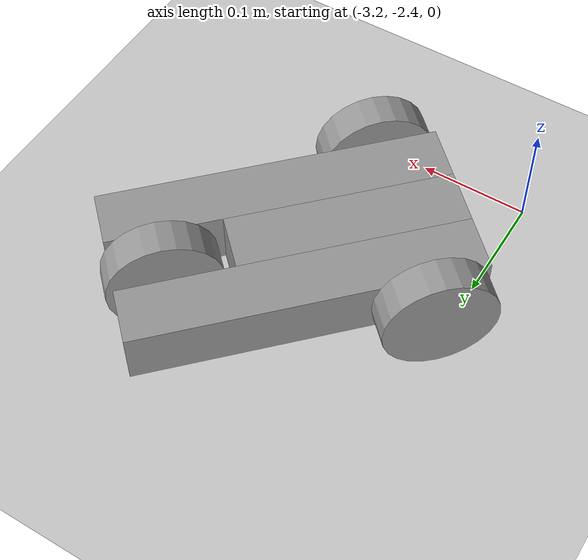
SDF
<sdf version="1.6">
 <world name="default">
  <model name="ground_plane">
   <static>1</static>
   <link name="link">
    <collision name="collision">
     <geometry><plane><normal>0 0 1</normal><size>100 100</size></plane></geometry>
     <surface><friction><ode><mu>100</mu><mu2>50</mu2></ode></friction></surface>
    </collision>
    <visual name="visual">
     <cast_shadows>0</cast_shadows>
     <geometry><plane><normal>0 0 1</normal><size>100 100</size></plane></geometry>
     <material>
      <script><uri>file://media/materials/scripts/gazebo.material</uri><name>Gazebo/Grey</name></script>
     </material>
    </visual>
   </link>
  </model>
  <model name="tricycle_0">
   <link name="link_0_clone">
    <pose>0.05011 -0.0238 0 0 -0 0</pose>
    <inertial>
     <mass>1</mass>
     <inertia>
      <ixx>0.166667</ixx>
      <ixy>0</ixy>
      <ixz>0</ixz>
      <iyy>0.166667</iyy>
      <iyz>0</iyz>
      <izz>0.166667</izz>
     </inertia>
    </inertial>
    <visual name="visual">
     <geometry><box><size>0.05 0.3 0.05</size></box></geometry>
     <material>
      <lighting>1</lighting>
      <script><uri>file://media/materials/scripts/gazebo.material</uri><name>Gazebo/Grey</name></script>
      <shader type="pixel"><normal_map>__default__</normal_map></shader>
      <ambient>0.3 0.3 0.3 1</ambient>
      <diffuse>0.7 0.7 0.7 1</diffuse>
      <specular>0.01 0.01 0.01 1</specular>
      <emissive>0 0 0 1</emissive>
     </material>
    </visual>
    <collision name="collision">
     <geometry><box><size>0.05 0.3 0.05</size></box></geometry>
     <surface>
      <friction>
       <ode><mu>1</mu><mu2>1</mu2><fdir1>0 0 0</fdir1><slip1>0</slip1><slip2>0</slip2></ode>
       <torsional>
        <coefficient>1</coefficient>
        <patch_radius>0</patch_radius>
        <surface_radius>0</surface_radius>
        <use_patch_radius>1</use_patch_radius>
        <ode><slip>0</slip></ode>
       </torsional>
      </friction>
      <bounce><restitution_coefficient>0</restitution_coefficient><threshold>1e+06</threshold></bounce>
      <contact>
       <collide_without_contact>0</collide_without_contact>
       <collide_without_contact_bitmask>1</collide_without_contact_bitmask>
       <collide_bitmask>1</collide_bitmask>
       <ode>
        <soft_cfm>0</soft_cfm>
        <soft_erp>0.2</soft_erp>
        <kp>1e+13</kp>
        <kd>1</kd>
        <max_vel>0.01</max_vel>
        <min_depth>0</min_depth>
       </ode>
       <bullet>
        <split_impulse>1</split_impulse>
        <split_impulse_penetration_threshold>-0.01</split_impulse_penetration_threshold>
        <soft_cfm>0</soft_cfm>
        <soft_erp>0.2</soft_erp>
        <kp>1e+13</kp>
        <kd>1</kd>
       </bullet>
      </contact>
     </surface>
    </collision>
   </link>
   <link name="link_0_clone_0">
    <pose>0.00011 0.0262 0 0 -0 0</pose>
    <inertial>
     <mass>1</mass>
     <inertia>
      <ixx>0.166667</ixx>
      <ixy>0</ixy>
      <ixz>0</ixz>
      <iyy>0.166667</iyy>
      <iyz>0</iyz>
      <izz>0.166667</izz>
     </inertia>
    </inertial>
    <visual name="visual">
     <geometry><box><size>0.05 0.2 0.05</size></box></geometry>
     <material>
      <lighting>1</lighting>
      <script><uri>file://media/materials/scripts/gazebo.material</uri><name>Gazebo/Grey</name></script>
      <shader type="pixel"><normal_map>__default__</normal_map></shader>
      <ambient>0.3 0.3 0.3 1</ambient>
      <diffuse>0.7 0.7 0.7 1</diffuse>
      <specular>0.01 0.01 0.01 1</specular>
      <emissive>0 0 0 1</emissive>
     </material>
    </visual>
    <collision name="collision">
     <geometry><box><size>0.05 0.2 0.05</size></box></geometry>
     <surface>
      <friction>
       <ode><mu>1</mu><mu2>1</mu2><fdir1>0 0 0</fdir1><slip1>0</slip1><slip2>0</slip2></ode>
       <torsional>
        <coefficient>1</coefficient>
        <patch_radius>0</patch_radius>
        <surface_radius>0</surface_radius>
        <use_patch_radius>1</use_patch_radius>
        <ode><slip>0</slip></ode>
       </torsional>
      </friction>
      <bounce><restitution_coefficient>0</restitution_coefficient><threshold>1e+06</threshold></bounce>
      <contact>
       <collide_without_contact>0</collide_without_contact>
       <collide_without_contact_bitmask>1</collide_without_contact_bitmask>
       <collide_bitmask>1</collide_bitmask>
       <ode>
        <soft_cfm>0</soft_cfm>
        <soft_erp>0.2</soft_erp>
        <kp>1e+13</kp>
        <kd>1</kd>
        <max_vel>0.01</max_vel>
        <min_depth>0</min_depth>
       </ode>
       <bullet>
        <split_impulse>1</split_impulse>
        <split_impulse_penetration_threshold>-0.01</split_impulse_penetration_threshold>
        <soft_cfm>0</soft_cfm>
        <soft_erp>0.2</soft_erp>
        <kp>1e+13</kp>
        <kd>1</kd>
       </bullet>
      </contact>
     </surface>
    </collision>
   </link>
   <link name="link_0_clone_clone">
    <pose>-0.04989 -0.0238 0 0 -0 0</pose>
    <inertial>
     <mass>1</mass>
     <inertia>
      <ixx>0.166667</ixx>
      <ixy>0</ixy>
      <ixz>0</ixz>
      <iyy>0.166667</iyy>
      <iyz>0</iyz>
      <izz>0.166667</izz>
     </inertia>
    </inertial>
    <visual name="visual">
     <geometry><box><size>0.05 0.3 0.05</size></box></geometry>
     <material>
      <lighting>1</lighting>
      <script><uri>file://media/materials/scripts/gazebo.material</uri><name>Gazebo/Grey</name></script>
      <shader type="pixel"><normal_map>__default__</normal_map></shader>
      <ambient>0.3 0.3 0.3 1</ambient>
      <diffuse>0.7 0.7 0.7 1</diffuse>
      <specular>0.01 0.01 0.01 1</specular>
      <emissive>0 0 0 1</emissive>
     </material>
    </visual>
    <collision name="collision">
     <geometry><box><size>0.05 0.3 0.05</size></box></geometry>
     <surface>
      <friction>
       <ode><mu>1</mu><mu2>1</mu2><fdir1>0 0 0</fdir1><slip1>0</slip1><slip2>0</slip2></ode>
       <torsional>
        <coefficient>1</coefficient>
        <patch_radius>0</patch_radius>
        <surface_radius>0</surface_radius>
        <use_patch_radius>1</use_patch_radius>
        <ode><slip>0</slip></ode>
       </torsional>
      </friction>
      <bounce><restitution_coefficient>0</restitution_coefficient><threshold>1e+06</threshold></bounce>
      <contact>
       <collide_without_contact>0</collide_without_contact>
       <collide_without_contact_bitmask>1</collide_without_contact_bitmask>
       <collide_bitmask>1</collide_bitmask>
       <ode>
        <soft_cfm>0</soft_cfm>
        <soft_erp>0.2</soft_erp>
        <kp>1e+13</kp>
        <kd>1</kd>
        <max_vel>0.01</max_vel>
        <min_depth>0</min_depth>
       </ode>
       <bullet>
        <split_impulse>1</split_impulse>
        <split_impulse_penetration_threshold>-0.01</split_impulse_penetration_threshold>
        <soft_cfm>0</soft_cfm>
        <soft_erp>0.2</soft_erp>
        <kp>1e+13</kp>
        <kd>1</kd>
       </bullet>
      </contact>
     </surface>
    </collision>
   </link>
   <link name="link_1">
    <pose>-0.000551 -0.131 0 0 -0 0</pose>
    <inertial>
     <mass>1</mass>
     <inertia><ixx>0.145833</ixx><ixy>0</ixy><ixz>0</ixz><iyy>0.145833</iyy><iyz>0</iyz><izz>0.125</izz></inertia>
    </inertial>
    <visual name="visual">
     <pose>0 0 0 0 1.5707 0</pose>
     <geometry><cylinder><radius>0.05</radius><length>0.03</length></cylinder></geometry>
     <material>
      <lighting>1</lighting>
      <script><uri>file://media/materials/scripts/gazebo.material</uri><name>Gazebo/Grey</name></script>
      <shader type="pixel"><normal_map>__default__</normal_map></shader>
      <ambient>0.3 0.3 0.3 1</ambient>
      <diffuse>0.7 0.7 0.7 1</diffuse>
      <specular>0.01 0.01 0.01 1</specular>
      <emissive>0 0 0 1</emissive>
     </material>
    </visual>
    <collision name="collision">
     <pose>0 0 0 0 1.5707 0</pose>
     <geometry><cylinder><radius>0.05</radius><length>0.03</length></cylinder></geometry>
     <surface>
      <friction>
       <ode><mu>1</mu><mu2>1</mu2><fdir1>0 0 0</fdir1><slip1>0</slip1><slip2>0</slip2></ode>
       <torsional>
        <coefficient>1</coefficient>
        <patch_radius>0</patch_radius>
        <surface_radius>0</surface_radius>
        <use_patch_radius>1</use_patch_radius>
        <ode><slip>0</slip></ode>
       </torsional>
      </friction>
      <bounce><restitution_coefficient>0</restitution_coefficient><threshold>1e+06</threshold></bounce>
      <contact>
       <collide_without_contact>0</collide_without_contact>
       <collide_without_contact_bitmask>1</collide_without_contact_bitmask>
       <collide_bitmask>1</collide_bitmask>
       <ode>
        <soft_cfm>0</soft_cfm>
        <soft_erp>0.2</soft_erp>
        <kp>1e+13</kp>
        <kd>1</kd>
        <max_vel>0.01</max_vel>
        <min_depth>0</min_depth>
       </ode>
       <bullet>
        <split_impulse>1</split_impulse>
        <split_impulse_penetration_threshold>-0.01</split_impulse_penetration_threshold>
        <soft_cfm>0</soft_cfm>
        <soft_erp>0.2</soft_erp>
        <kp>1e+13</kp>
        <kd>1</kd>
       </bullet>
      </contact>
     </surface>
    </collision>
   </link>
   <link name="link_1_clone">
    <pose>0.090114 0.0762 0 0 -0 0</pose>
    <inertial>
     <mass>1</mass>
     <inertia><ixx>0.145833</ixx><ixy>0</ixy><ixz>0</ixz><iyy>0.145833</iyy><iyz>0</iyz><izz>0.125</izz></inertia>
    </inertial>
    <visual name="visual">
     <pose>0 0 0 0 1.5707 0</pose>
     <geometry><cylinder><radius>0.05</radius><length>0.03</length></cylinder></geometry>
     <material>
      <lighting>1</lighting>
      <script><uri>file://media/materials/scripts/gazebo.material</uri><name>Gazebo/Grey</name></script>
      <shader type="pixel"><normal_map>__default__</normal_map></shader>
      <ambient>0.3 0.3 0.3 1</ambient>
      <diffuse>0.7 0.7 0.7 1</diffuse>
      <specular>0.01 0.01 0.01 1</specular>
      <emissive>0 0 0 1</emissive>
     </material>
    </visual>
    <collision name="collision">
     <pose>0 0 0 0 1.5707 0</pose>
     <geometry><cylinder><radius>0.05</radius><length>0.03</length></cylinder></geometry>
     <surface>
      <friction>
       <ode><mu>1</mu><mu2>1</mu2><fdir1>0 0 0</fdir1><slip1>0</slip1><slip2>0</slip2></ode>
       <torsional>
        <coefficient>1</coefficient>
        <patch_radius>0</patch_radius>
        <surface_radius>0</surface_radius>
        <use_patch_radius>1</use_patch_radius>
        <ode><slip>0</slip></ode>
       </torsional>
      </friction>
      <bounce><restitution_coefficient>0</restitution_coefficient><threshold>1e+06</threshold></bounce>
      <contact>
       <collide_without_contact>0</collide_without_contact>
       <collide_without_contact_bitmask>1</collide_without_contact_bitmask>
       <collide_bitmask>1</collide_bitmask>
       <ode>
        <soft_cfm>0</soft_cfm>
        <soft_erp>0.2</soft_erp>
        <kp>1e+13</kp>
        <kd>1</kd>
        <max_vel>0.01</max_vel>
        <min_depth>0</min_depth>
       </ode>
       <bullet>
        <split_impulse>1</split_impulse>
        <split_impulse_penetration_threshold>-0.01</split_impulse_penetration_threshold>
        <soft_cfm>0</soft_cfm>
        <soft_erp>0.2</soft_erp>
        <kp>1e+13</kp>
        <kd>1</kd>
       </bullet>
      </contact>
     </surface>
    </collision>
   </link>
   <link name="link_1_clone_0">
    <pose>-0.089895 0.0762 0 0 -0 0</pose>
    <inertial>
     <mass>1</mass>
     <inertia><ixx>0.145833</ixx><ixy>0</ixy><ixz>0</ixz><iyy>0.145833</iyy><iyz>0</iyz><izz>0.125</izz></inertia>
    </inertial>
    <visual name="visual">
     <pose>0 0 0 0 1.5707 0</pose>
     <geometry><cylinder><radius>0.05</radius><length>0.03</length></cylinder></geometry>
     <material>
      <lighting>1</lighting>
      <script><uri>file://media/materials/scripts/gazebo.material</uri><name>Gazebo/Grey</name></script>
      <shader type="pixel"><normal_map>__default__</normal_map></shader>
      <ambient>0.3 0.3 0.3 1</ambient>
      <diffuse>0.7 0.7 0.7 1</diffuse>
      <specular>0.01 0.01 0.01 1</specular>
      <emissive>0 0 0 1</emissive>
     </material>
    </visual>
    <collision name="collision">
     <pose>0 0 0 0 1.5707 0</pose>
     <geometry><cylinder><radius>0.05</radius><length>0.03</length></cylinder></geometry>
     <surface>
      <friction>
       <ode><mu>1</mu><mu2>1</mu2><fdir1>0 0 0</fdir1><slip1>0</slip1><slip2>0</slip2></ode>
       <torsional>
        <coefficient>1</coefficient>
        <patch_radius>0</patch_radius>
        <surface_radius>0</surface_radius>
        <use_patch_radius>1</use_patch_radius>
        <ode><slip>0</slip></ode>
       </torsional>
      </friction>
      <bounce><restitution_coefficient>0</restitution_coefficient><threshold>1e+06</threshold></bounce>
      <contact>
       <collide_without_contact>0</collide_without_contact>
       <collide_without_contact_bitmask>1</collide_without_contact_bitmask>
       <collide_bitmask>1</collide_bitmask>
       <ode>
        <soft_cfm>0</soft_cfm>
        <soft_erp>0.2</soft_erp>
        <kp>1e+13</kp>
        <kd>1</kd>
        <max_vel>0.01</max_vel>
        <min_depth>0</min_depth>
       </ode>
       <bullet>
        <split_impulse>1</split_impulse>
        <split_impulse_penetration_threshold>-0.01</split_impulse_penetration_threshold>
        <soft_cfm>0</soft_cfm>
        <soft_erp>0.2</soft_erp>
        <kp>1e+13</kp>
        <kd>1</kd>
       </bullet>
      </contact>
     </surface>
    </collision>
   </link>
   <joint name="link_0_clone_0_JOINT_0" type="fixed">
    <parent>link_0_clone_0</parent>
    <child>link_0_clone</child>
    <physics>
     <ode><limit><cfm>0</cfm><erp>0.2</erp></limit><suspension><cfm>0</cfm><erp>0.2</erp></suspension></ode>
    </physics>
   </joint>
   <joint name="link_0_clone_0_JOINT_2" type="fixed">
    <parent>link_0_clone_0</parent>
    <child>link_0_clone_clone</child>
    <physics>
     <ode><limit><cfm>0</cfm><erp>0.2</erp></limit><suspension><cfm>0</cfm><erp>0.2</erp></suspension></ode>
    </physics>
   </joint>
   <joint name="link_0_clone_JOINT_3" type="revolute">
    <parent>link_0_clone</parent>
    <child>link_1</child>
    <axis>
     <xyz>1 0 0</xyz>
     <use_parent_model_frame>0</use_parent_model_frame>
     <limit>
      <lower>-1.79769e+308</lower>
      <upper>1.79769e+308</upper>
      <effort>-1</effort>
      <velocity>-1</velocity>
     </limit>
     <dynamics>
      <spring_reference>0</spring_reference>
      <spring_stiffness>0</spring_stiffness>
      <damping>0</damping>
     </dynamics>
    </axis>
    <physics>
     <ode><limit><cfm>0</cfm><erp>0.2</erp></limit><suspension><cfm>0</cfm><erp>0.2</erp></suspension></ode>
    </physics>
   </joint>
   <joint name="link_0_clone_JOINT_4" type="revolute">
    <parent>link_0_clone</parent>
    <child>link_1_clone</child>
    <axis>
     <xyz>1 0 0</xyz>
     <use_parent_model_frame>0</use_parent_model_frame>
     <limit>
      <lower>-1.79769e+308</lower>
      <upper>1.79769e+308</upper>
      <effort>-1</effort>
      <velocity>-1</velocity>
     </limit>
     <dynamics>
      <spring_reference>0</spring_reference>
      <spring_stiffness>0</spring_stiffness>
      <damping>0</damping>
     </dynamics>
    </axis>
    <physics>
     <ode><limit><cfm>0</cfm><erp>0.2</erp></limit><suspension><cfm>0</cfm><erp>0.2</erp></suspension></ode>
    </physics>
   </joint>
   <joint name="link_0_clone_clone_JOINT_5" type="revolute">
    <parent>link_0_clone_clone</parent>
    <child>link_1_clone_0</child>
    <axis>
     <xyz>1 0 0</xyz>
     <use_parent_model_frame>0</use_parent_model_frame>
     <limit>
      <lower>-1.79769e+308</lower>
      <upper>1.79769e+308</upper>
      <effort>-1</effort>
      <velocity>-1</velocity>
     </limit>
     <dynamics>
      <spring_reference>0</spring_reference>
      <spring_stiffness>0</spring_stiffness>
      <damping>0</damping>
     </dynamics>
    </axis>
    <physics>
     <ode><limit><cfm>0</cfm><erp>0.2</erp></limit><suspension><cfm>0</cfm><erp>0.2</erp></suspension></ode>
    </physics>
   </joint>
   <static>0</static>
   <pose>-3.07912 -2.23995 0.050002 8e-06 1.6e-05 2.37116</pose>
  </model>
 </world>
</sdf>
